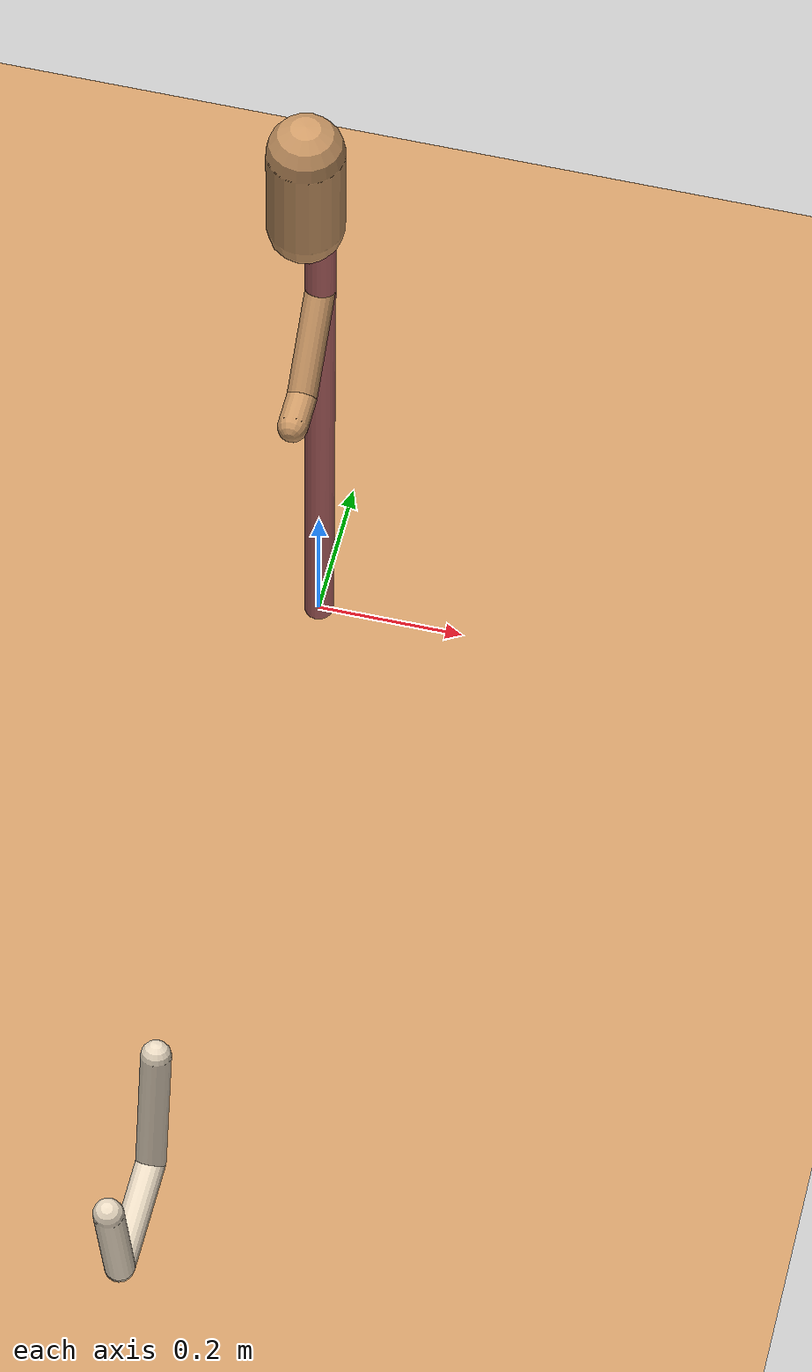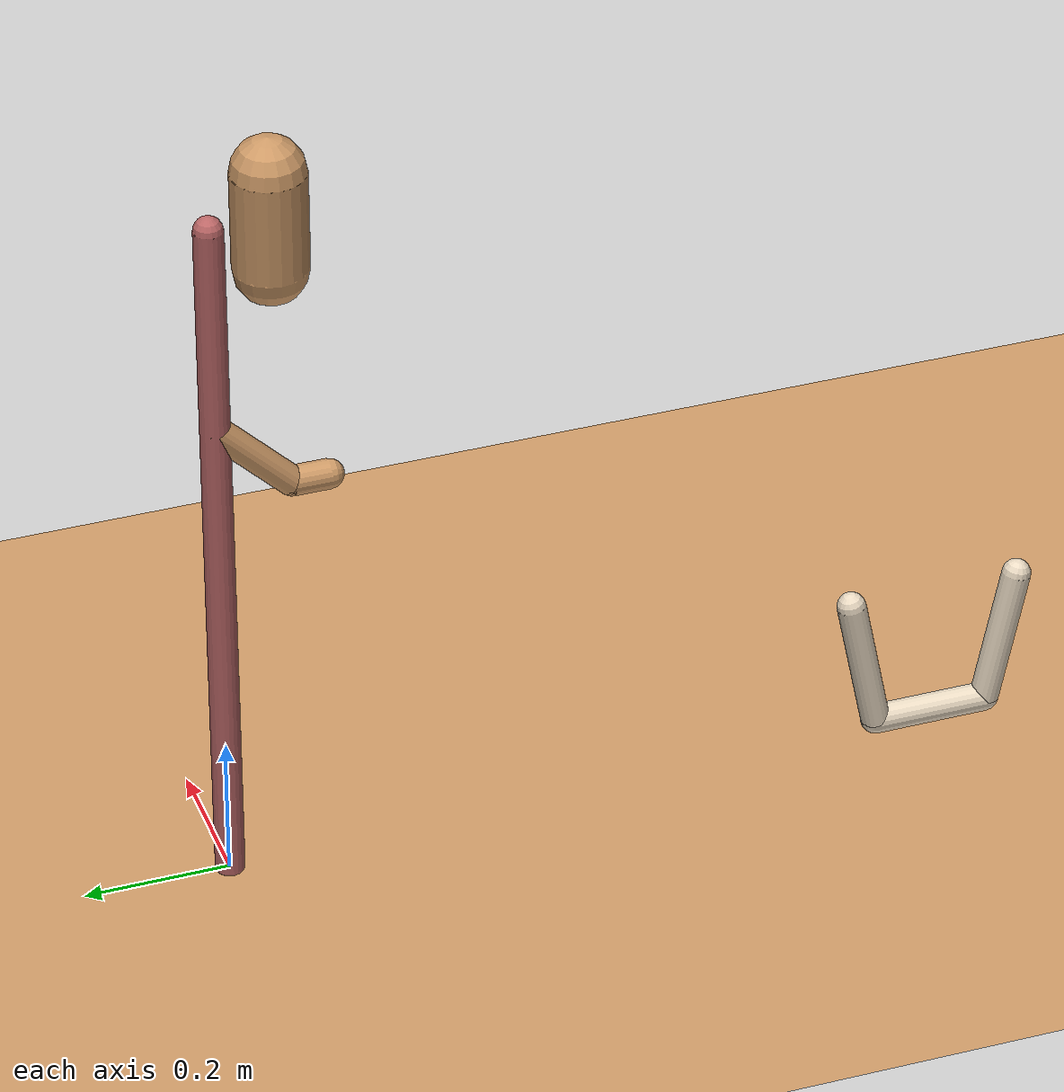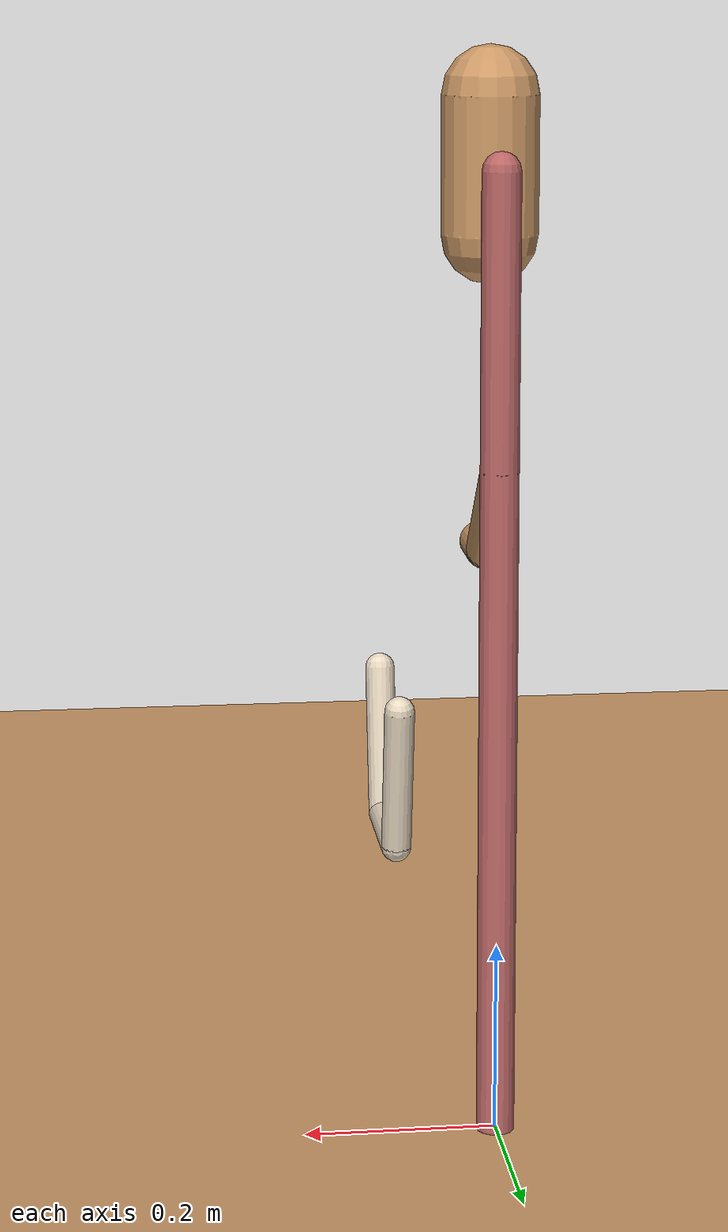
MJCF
<!-- Author: vikash@openai.com-->
<mujoco model='tosser-v1.5'>
    <compiler inertiafromgeom='auto' angle='radian'/>

    <default>
        <joint limited='true' damping='1' armature='0'/>
        <geom contype='1' conaffinity='1' condim='3' rgba='0.8 0.6 .4 1'
        	margin="0.001" solref=".02 1" solimp=".8 .8 .01" material="geom"/>
        <motor ctrlrange='-1 1'  ctrllimited='true'/>
    </default>

    <option timestep='0.002' iterations="50" solver="PGS">
        <flag energy="enable"/>
    </option>

    <visual>
        <map fogstart="3" fogend="5" force="0.1" znear="0.1" zfar="10"/>
        <quality shadowsize="2048"/>
        <global offwidth="800" offheight="800"/>
    </visual>
	<statistic extent="1" />

    <asset>
		<texture type="skybox" builtin="gradient" width="128" height="128" rgb1=".4 .6 .8"
            rgb2="0 0 0"/>
        <texture name="texgeom" type="cube" builtin="flat" mark="cross" width="127" height="1278"
            rgb1="0.8 0.6 0.4" rgb2="0.8 0.6 0.4" markrgb="1 1 1" random="0.01"/>
        <texture name="texplane" type="2d" builtin="checker" rgb1=".2 .3 .4" rgb2=".1 0.15 0.2"
            width="512" height="512"/>
		<texture name="texobj" type="2d" builtin="checker" rgb1="1 0 0" rgb2="0 0 1"
            width="512" height="512"/>

		<material name='MatPlane' reflectance='0' texture="texplane" texrepeat="1 1" texuniform="true"/>
		<material name='MatObj' reflectance='0' texture="texobj" texrepeat="1 1" texuniform="true"/>
        <material name='geom' texuniform="true"/>
    </asset>

    <worldbody>
        <light directional='false' diffuse='.8 .8 .8' specular='0.3 0.3 0.3' pos='0 0 4.0' dir='0 -.15 -1'/>
		<geom name='floor' pos='0 -1 0' size='1.5 3 .125' type='plane' material="MatPlane" condim='3'/>

		<camera name="cam" mode="fixed" pos="1.7 -1 0.65" euler="1.57 1.57 0" fovy="45"/>

		<body name='basket0' pos='0 -1 0'>
			<geom pos='0 -.1 .12' type='capsule' size='.02 .1' rgba='0.91 0.85 0.76 1' condim='1' euler='.2 0 0'/>
			<geom pos='0  .1 .12' type='capsule' size='.02 .1' rgba='0.91 0.85 0.76 1' condim='1' euler='-.2 0 0'/>
			<geom pos='0  0 .02' type='capsule' size='.02 .08' rgba='0.91 0.85 0.76 1' condim='1' euler='1.57 0 0'/>
			<site name='t0' pos='0 0 .03' type='box' group='4' size='.02 .1 .02'/>
			<joint name='movey' type='slide' axis='0 1 0' limited='true' range="-.75 .75" damping='.01'/>
		</body>

		<body name='obj' pos='0 -.08 1'>

			<geom name='gobj' type='capsule' size='.05 .07' pos="0 0 0.0" mass="1.8" material="MatObj" />

			<joint name='bally' type='slide' axis='0 1 0' limited='false' damping='.01'/>
			<joint name='ballz' type='slide' axis='0 0 1' limited='false' damping='.01'/>
			<joint name='ballx' type='hinge' axis='1 0 0' limited='false' damping='.01'/>
		</body>

		<body name='wall' pos='0 0 0'>
			<geom name='wall' pos='0 0 .5' size='.02 .5' type='capsule' rgba='.73 .4 .4 1'/>
			<body name='hand' pos='0 0 0'>
				<geom name='palm' type='capsule' size='.02' fromto='0 0 .7 0 -.1 .6'/>
				<geom name='finger' type='capsule' size='.02' fromto='0 -.1 .6 0 -.15 .6'/>
				<joint name='wr_js' type='slide' pos='0 0 .7' axis='0 0 1' range='-.6 .25' damping='10'/>
				<joint name='wr_jr' type='hinge' pos='0 0 .7' axis='1 0 0' range='-1.57 0.8'/>
			</body>
		</body>
	</worldbody>

    <actuator>
		<motor name='catcher_y' gear='1000' joint='movey'/>
		<motor name='a1' gear='35' joint='wr_js'/>
		<motor name='a2' gear='35' joint='wr_jr'/>
    </actuator>

	<sensor>
		<jointpos name="S_move_pos"	joint="movey"/>
		<jointvel name="S_move_vel"	joint="movey"/>

		<jointpos name="pos_by"	joint="bally"/>
		<jointpos name="pos_bz"	joint="ballz"/>
		<jointpos name="pos_bx"	joint="ballx"/>

		<jointvel name="vel_by"	joint="bally"/>
		<jointvel name="vel_bz"	joint="ballz"/>
		<jointvel name="vel_bx"	joint="ballx"/>

		<touch name="s_t1"	site="t0"/>
	</sensor>

</mujoco>
